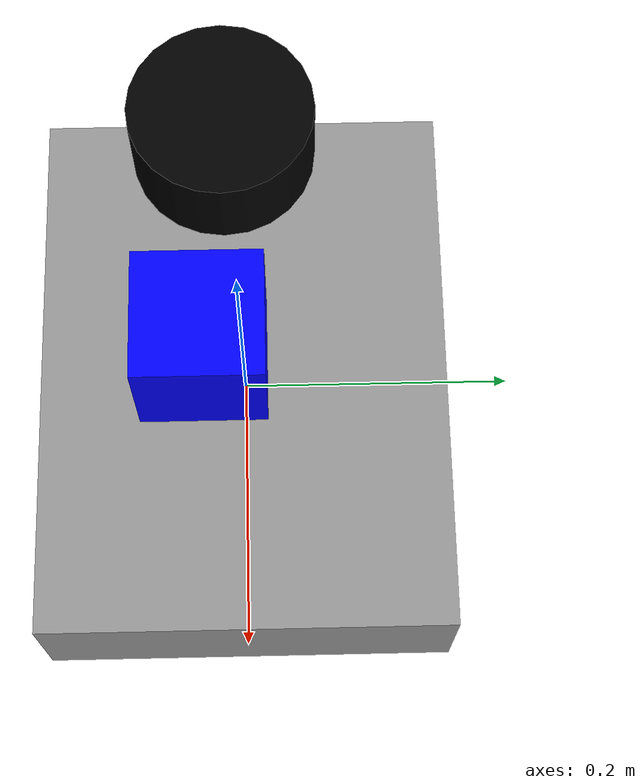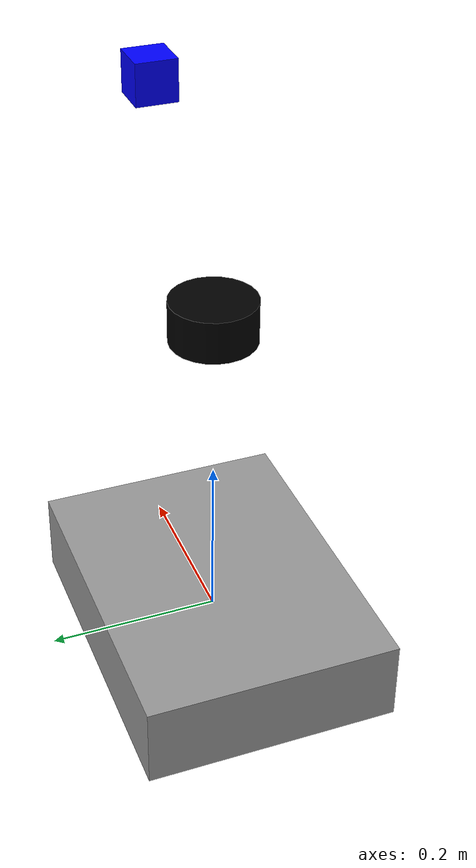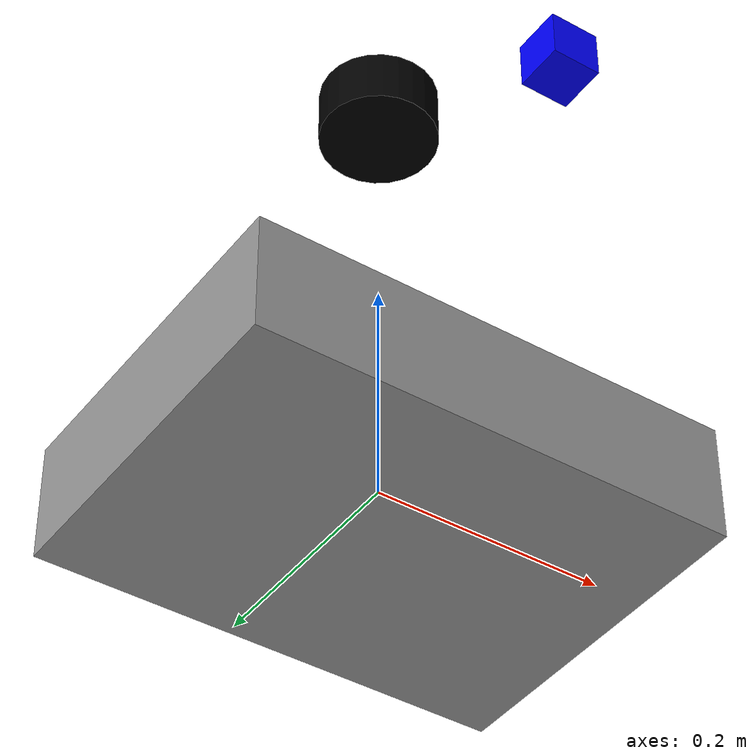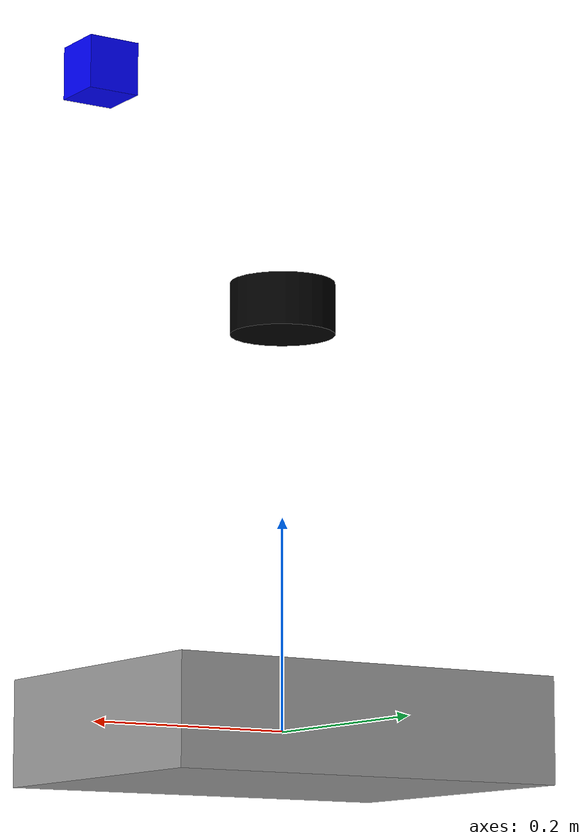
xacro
<?xml version="1.0"?>
<robot xmlns:xacro="http://ros.org/wiki/xacro" name="slam_bot">

  <!-- Properties -->
  <xacro:property name="base_width" value="0.3"/>
  <xacro:property name="base_length" value="0.4"/>
  <xacro:property name="base_height" value="0.1"/>
  <xacro:property name="lidar_height" value="0.2"/>
  <xacro:property name="camera_height" value="0.3"/>

  <!-- Base Link -->
  <link name="base_link">
    <visual>
      <geometry>
        <box size="${base_length} ${base_width} ${base_height}"/>
      </geometry>
      <material name="gray">
        <color rgba="0.6 0.6 0.6 1.0"/>
      </material>
    </visual>
    <collision>
      <geometry>
        <box size="${base_length} ${base_width} ${base_height}"/>
      </geometry>
    </collision>
    <inertial>
      <mass value="2.0"/>
      <inertia ixx="0.1" ixy="0.0" ixz="0.0" iyy="0.1" iyz="0.0" izz="0.1"/>
      <origin xyz="0 0 0" rpy="0 0 0"/>
    </inertial>
  </link>

  <!-- LiDAR -->
  <link name="lidar_link">
    <visual>
      <geometry>
        <cylinder radius="0.05" length="0.05"/>
      </geometry>
      <origin xyz="0 0 ${lidar_height}" rpy="0 0 0"/>
      <material name="black">
        <color rgba="0 0 0 1"/>
      </material>
    </visual>
  </link>

  <joint name="lidar_joint" type="fixed">
    <parent link="base_link"/>
    <child link="lidar_link"/>
    <origin xyz="0 0 ${lidar_height}" rpy="0 0 0"/>
  </joint>

  <!-- RGB Camera -->
  <link name="camera_link">
    <visual>
      <geometry>
        <box size="0.05 0.05 0.05"/>
      </geometry>
      <origin xyz="0.1 0 ${camera_height}" rpy="0 0 0"/>
      <material name="blue">
        <color rgba="0 0 1 1"/>
      </material>
    </visual>
  </link>

  <joint name="camera_joint" type="fixed">
    <parent link="base_link"/>
    <child link="camera_link"/>
    <origin xyz="0.1 0 ${camera_height}" rpy="0 0 0"/>
  </joint>

  <!-- LiDAR Sensor Plugin -->
  <gazebo>
    <plugin name="gazebo_ros_laser" filename="libgazebo_ros_ray_sensor.so">
      <ros>
        <namespace>/</namespace>
        <remapping>scan:=scan</remapping>
      </ros>
      <frameName>lidar_link</frameName>
      <topicName>scan</topicName>
      <updateRate>10.0</updateRate>
    </plugin>
  </gazebo>

  <!-- Camera Sensor Plugin -->
  <gazebo reference="camera_link">
    <sensor name="camera_sensor" type="camera">
      <update_rate>15.0</update_rate>
      <camera>
        <horizontal_fov>1.3962634</horizontal_fov>
        <image>
          <width>640</width>
          <height>480</height>
          <format>R8G8B8</format>
        </image>
        <clip>
          <near>0.1</near>
          <far>100</far>
        </clip>
      </camera>
      <plugin name="camera_controller" filename="libgazebo_ros_camera.so">
        <cameraName>camera</cameraName>
        <imageTopicName>image_raw</imageTopicName>
        <cameraInfoTopicName>camera_info</cameraInfoTopicName>
        <frameName>camera_link</frameName>
      </plugin>
    </sensor>
  </gazebo>

</robot>
